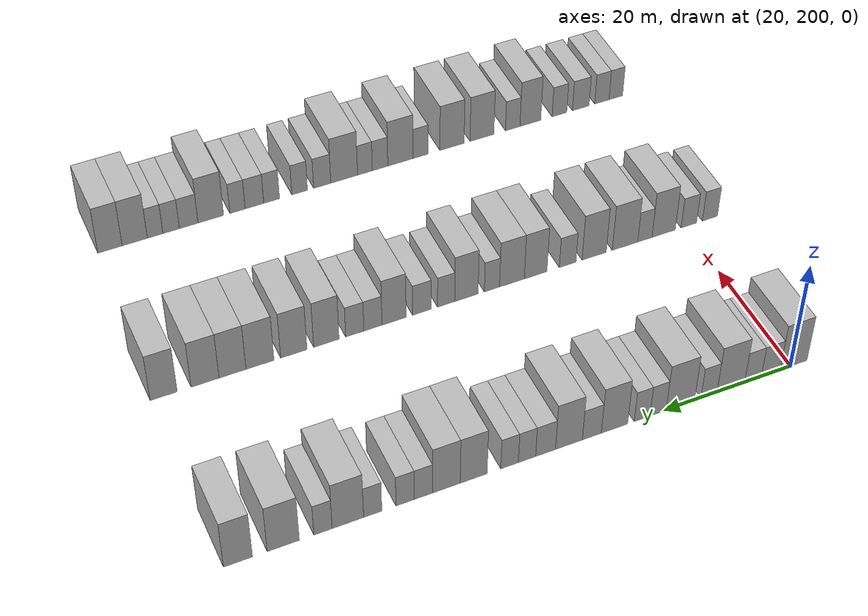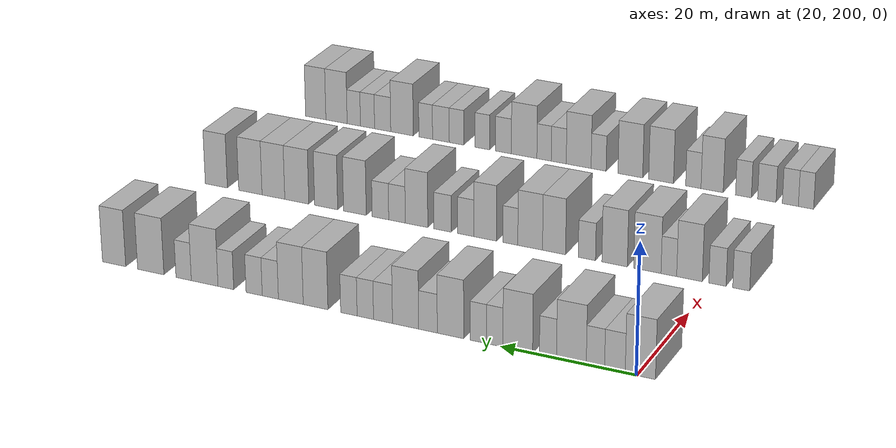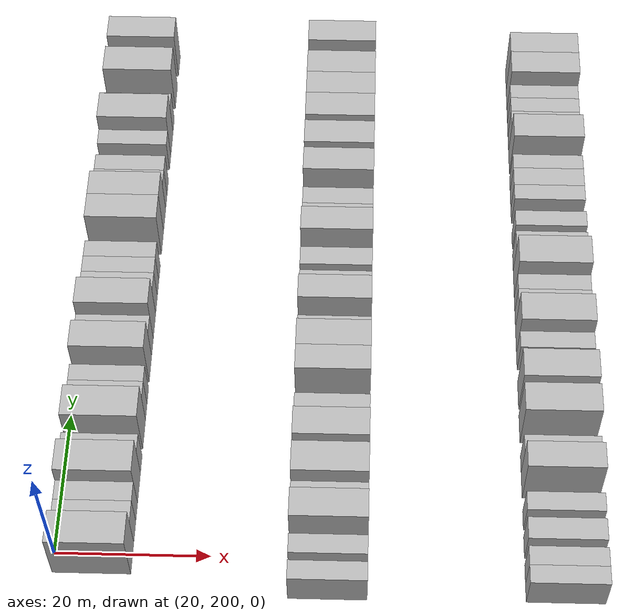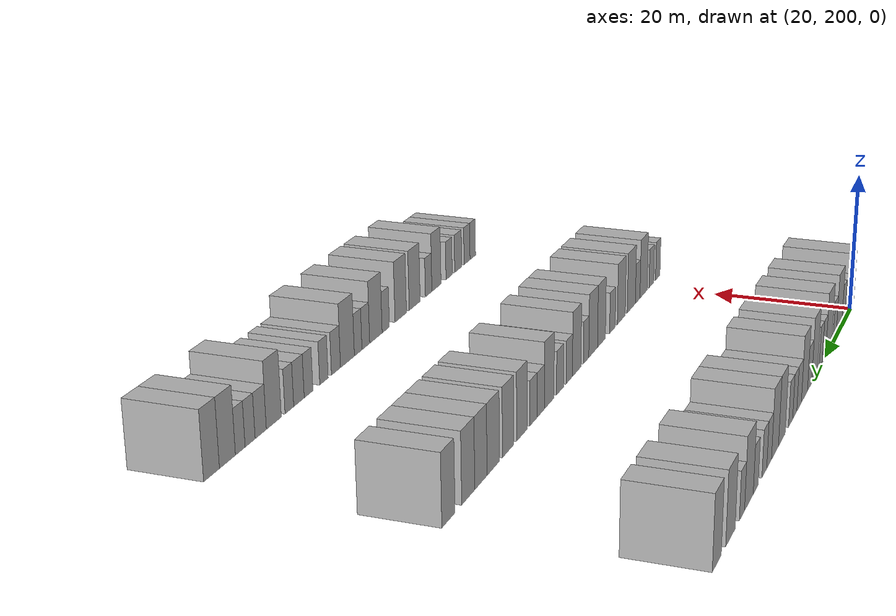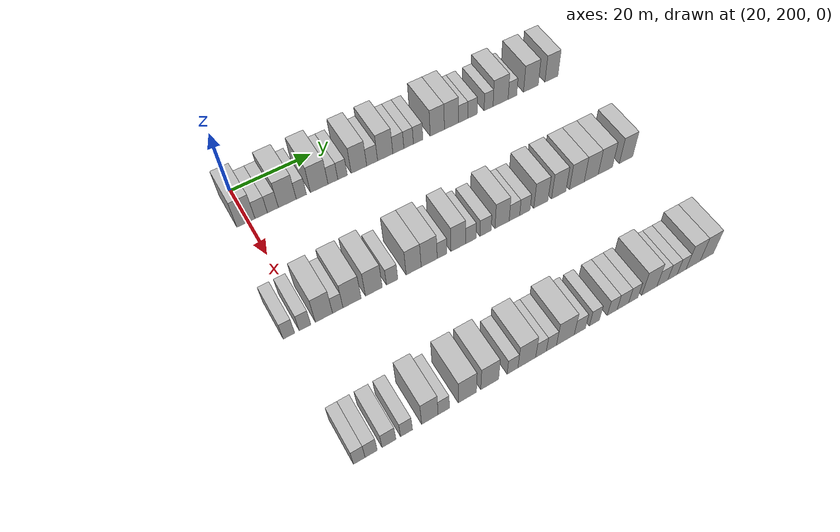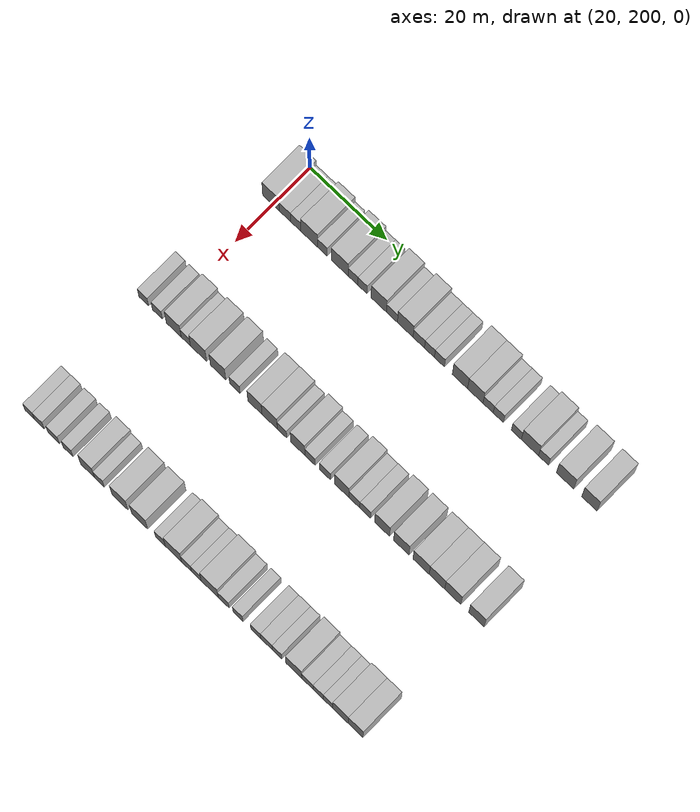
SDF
<sdf version="1.6">
 <world name="default">
  <model name="building_124">
   <static>1</static>
   <pose>25.0000 199.4921 0 0.000000 0.000000 0.000000</pose>
   <link name="link">
    <pose>0 0 4.50 0 0 0</pose>
    <collision name="collision"><geometry><box><size>10.0000 4.3351 9.0000</size></box></geometry></collision>
    <visual name="visual">
     <cast_shadows>0</cast_shadows>
     <geometry><box><size>10.0000 4.3351 9.0000</size></box></geometry>
     <material>
      <script>
       <uri>model://HANNAS_wall/materials/scripts</uri>
       <uri>model://HANNAS_wall/materials/textures</uri>
       <name>vrc/HANNAS_wall</name>
      </script>
     </material>
    </visual>
   </link>
  </model>
  <model name="building_125">
   <static>1</static>
   <pose>25.0000 203.1536 0 0.000000 0.000000 0.000000</pose>
   <link name="link">
    <pose>0 0 3.00 0 0 0</pose>
    <collision name="collision"><geometry><box><size>10.0000 2.9879 6.0000</size></box></geometry></collision>
    <visual name="visual">
     <cast_shadows>0</cast_shadows>
     <geometry><box><size>10.0000 2.9879 6.0000</size></box></geometry>
     <material>
      <script>
       <uri>model://HANNAS_wall/materials/scripts</uri>
       <uri>model://HANNAS_wall/materials/textures</uri>
       <name>vrc/HANNAS_wall</name>
      </script>
     </material>
    </visual>
   </link>
  </model>
  <model name="building_126">
   <static>1</static>
   <pose>25.0000 205.9770 0 0.000000 0.000000 0.000000</pose>
   <link name="link">
    <pose>0 0 3.00 0 0 0</pose>
    <collision name="collision"><geometry><box><size>10.0000 2.6588 6.0000</size></box></geometry></collision>
    <visual name="visual">
     <cast_shadows>0</cast_shadows>
     <geometry><box><size>10.0000 2.6588 6.0000</size></box></geometry>
     <material>
      <script>
       <uri>model://HANNAS_wall/materials/scripts</uri>
       <uri>model://HANNAS_wall/materials/textures</uri>
       <name>vrc/HANNAS_wall</name>
      </script>
     </material>
    </visual>
   </link>
  </model>
  <model name="building_127">
   <static>1</static>
   <pose>25.0000 209.4881 0 0.000000 0.000000 0.000000</pose>
   <link name="link">
    <pose>0 0 4.50 0 0 0</pose>
    <collision name="collision"><geometry><box><size>10.0000 4.3633 9.0000</size></box></geometry></collision>
    <visual name="visual">
     <cast_shadows>0</cast_shadows>
     <geometry><box><size>10.0000 4.3633 9.0000</size></box></geometry>
     <material>
      <script>
       <uri>model://HANNAS_wall/materials/scripts</uri>
       <uri>model://HANNAS_wall/materials/textures</uri>
       <name>vrc/HANNAS_wall</name>
      </script>
     </material>
    </visual>
   </link>
  </model>
  <model name="building_128">
   <static>1</static>
   <pose>25.0000 212.9319 0 0.000000 0.000000 0.000000</pose>
   <link name="link">
    <pose>0 0 3.00 0 0 0</pose>
    <collision name="collision"><geometry><box><size>10.0000 2.5245 6.0000</size></box></geometry></collision>
    <visual name="visual">
     <cast_shadows>0</cast_shadows>
     <geometry><box><size>10.0000 2.5245 6.0000</size></box></geometry>
     <material>
      <script>
       <uri>model://HANNAS_wall/materials/scripts</uri>
       <uri>model://HANNAS_wall/materials/textures</uri>
       <name>vrc/HANNAS_wall</name>
      </script>
     </material>
    </visual>
   </link>
  </model>
  <model name="building_129">
   <static>1</static>
   <pose>25.0000 217.4021 0 0.000000 0.000000 0.000000</pose>
   <link name="link">
    <pose>0 0 4.50 0 0 0</pose>
    <collision name="collision"><geometry><box><size>10.0000 4.4158 9.0000</size></box></geometry></collision>
    <visual name="visual">
     <cast_shadows>0</cast_shadows>
     <geometry><box><size>10.0000 4.4158 9.0000</size></box></geometry>
     <material>
      <script>
       <uri>model://HANNAS_wall/materials/scripts</uri>
       <uri>model://HANNAS_wall/materials/textures</uri>
       <name>vrc/HANNAS_wall</name>
      </script>
     </material>
    </visual>
   </link>
  </model>
  <model name="building_130">
   <static>1</static>
   <pose>25.0000 220.8571 0 0.000000 0.000000 0.000000</pose>
   <link name="link">
    <pose>0 0 3.00 0 0 0</pose>
    <collision name="collision"><geometry><box><size>10.0000 2.4944 6.0000</size></box></geometry></collision>
    <visual name="visual">
     <cast_shadows>0</cast_shadows>
     <geometry><box><size>10.0000 2.4944 6.0000</size></box></geometry>
     <material>
      <script>
       <uri>model://HANNAS_wall/materials/scripts</uri>
       <uri>model://HANNAS_wall/materials/textures</uri>
       <name>vrc/HANNAS_wall</name>
      </script>
     </material>
    </visual>
   </link>
  </model>
  <model name="building_131">
   <static>1</static>
   <pose>25.0000 223.3138 0 0.000000 0.000000 0.000000</pose>
   <link name="link">
    <pose>0 0 3.00 0 0 0</pose>
    <collision name="collision"><geometry><box><size>10.0000 2.4189 6.0000</size></box></geometry></collision>
    <visual name="visual">
     <cast_shadows>0</cast_shadows>
     <geometry><box><size>10.0000 2.4189 6.0000</size></box></geometry>
     <material>
      <script>
       <uri>model://HANNAS_wall/materials/scripts</uri>
       <uri>model://HANNAS_wall/materials/textures</uri>
       <name>vrc/HANNAS_wall</name>
      </script>
     </material>
    </visual>
   </link>
  </model>
  <model name="building_132">
   <static>1</static>
   <pose>25.0000 227.5290 0 0.000000 0.000000 0.000000</pose>
   <link name="link">
    <pose>0 0 4.50 0 0 0</pose>
    <collision name="collision"><geometry><box><size>10.0000 4.0116 9.0000</size></box></geometry></collision>
    <visual name="visual">
     <cast_shadows>0</cast_shadows>
     <geometry><box><size>10.0000 4.0116 9.0000</size></box></geometry>
     <material>
      <script>
       <uri>model://HANNAS_wall/materials/scripts</uri>
       <uri>model://HANNAS_wall/materials/textures</uri>
       <name>vrc/HANNAS_wall</name>
      </script>
     </material>
    </visual>
   </link>
  </model>
  <model name="building_133">
   <static>1</static>
   <pose>25.0000 230.9616 0 0.000000 0.000000 0.000000</pose>
   <link name="link">
    <pose>0 0 3.00 0 0 0</pose>
    <collision name="collision"><geometry><box><size>10.0000 2.8536 6.0000</size></box></geometry></collision>
    <visual name="visual">
     <cast_shadows>0</cast_shadows>
     <geometry><box><size>10.0000 2.8536 6.0000</size></box></geometry>
     <material>
      <script>
       <uri>model://HANNAS_wall/materials/scripts</uri>
       <uri>model://HANNAS_wall/materials/textures</uri>
       <name>vrc/HANNAS_wall</name>
      </script>
     </material>
    </visual>
   </link>
  </model>
  <model name="building_134">
   <static>1</static>
   <pose>25.0000 234.4057 0 0.000000 0.000000 0.000000</pose>
   <link name="link">
    <pose>0 0 4.50 0 0 0</pose>
    <collision name="collision"><geometry><box><size>10.0000 4.0347 9.0000</size></box></geometry></collision>
    <visual name="visual">
     <cast_shadows>0</cast_shadows>
     <geometry><box><size>10.0000 4.0347 9.0000</size></box></geometry>
     <material>
      <script>
       <uri>model://HANNAS_wall/materials/scripts</uri>
       <uri>model://HANNAS_wall/materials/textures</uri>
       <name>vrc/HANNAS_wall</name>
      </script>
     </material>
    </visual>
   </link>
  </model>
  <model name="building_135">
   <static>1</static>
   <pose>25.0000 237.8951 0 0.000000 0.000000 0.000000</pose>
   <link name="link">
    <pose>0 0 3.00 0 0 0</pose>
    <collision name="collision"><geometry><box><size>10.0000 2.9441 6.0000</size></box></geometry></collision>
    <visual name="visual">
     <cast_shadows>0</cast_shadows>
     <geometry><box><size>10.0000 2.9441 6.0000</size></box></geometry>
     <material>
      <script>
       <uri>model://HANNAS_wall/materials/scripts</uri>
       <uri>model://HANNAS_wall/materials/textures</uri>
       <name>vrc/HANNAS_wall</name>
      </script>
     </material>
    </visual>
   </link>
  </model>
  <model name="building_136">
   <static>1</static>
   <pose>25.0000 240.6476 0 0.000000 0.000000 0.000000</pose>
   <link name="link">
    <pose>0 0 3.00 0 0 0</pose>
    <collision name="collision"><geometry><box><size>10.0000 2.5608 6.0000</size></box></geometry></collision>
    <visual name="visual">
     <cast_shadows>0</cast_shadows>
     <geometry><box><size>10.0000 2.5608 6.0000</size></box></geometry>
     <material>
      <script>
       <uri>model://HANNAS_wall/materials/scripts</uri>
       <uri>model://HANNAS_wall/materials/textures</uri>
       <name>vrc/HANNAS_wall</name>
      </script>
     </material>
    </visual>
   </link>
  </model>
  <model name="building_137">
   <static>1</static>
   <pose>25.0000 243.2181 0 0.000000 0.000000 0.000000</pose>
   <link name="link">
    <pose>0 0 3.00 0 0 0</pose>
    <collision name="collision"><geometry><box><size>10.0000 2.5803 6.0000</size></box></geometry></collision>
    <visual name="visual">
     <cast_shadows>0</cast_shadows>
     <geometry><box><size>10.0000 2.5803 6.0000</size></box></geometry>
     <material>
      <script>
       <uri>model://HANNAS_wall/materials/scripts</uri>
       <uri>model://HANNAS_wall/materials/textures</uri>
       <name>vrc/HANNAS_wall</name>
      </script>
     </material>
    </visual>
   </link>
  </model>
  <model name="building_138">
   <static>1</static>
   <pose>25.0000 248.4667 0 0.000000 0.000000 0.000000</pose>
   <link name="link">
    <pose>0 0 4.50 0 0 0</pose>
    <collision name="collision"><geometry><box><size>10.0000 3.9170 9.0000</size></box></geometry></collision>
    <visual name="visual">
     <cast_shadows>0</cast_shadows>
     <geometry><box><size>10.0000 3.9170 9.0000</size></box></geometry>
     <material>
      <script>
       <uri>model://HANNAS_wall/materials/scripts</uri>
       <uri>model://HANNAS_wall/materials/textures</uri>
       <name>vrc/HANNAS_wall</name>
      </script>
     </material>
    </visual>
   </link>
  </model>
  <model name="building_139">
   <static>1</static>
   <pose>25.0000 252.4111 0 0.000000 0.000000 0.000000</pose>
   <link name="link">
    <pose>0 0 4.50 0 0 0</pose>
    <collision name="collision"><geometry><box><size>10.0000 3.9717 9.0000</size></box></geometry></collision>
    <visual name="visual">
     <cast_shadows>0</cast_shadows>
     <geometry><box><size>10.0000 3.9717 9.0000</size></box></geometry>
     <material>
      <script>
       <uri>model://HANNAS_wall/materials/scripts</uri>
       <uri>model://HANNAS_wall/materials/textures</uri>
       <name>vrc/HANNAS_wall</name>
      </script>
     </material>
    </visual>
   </link>
  </model>
  <model name="building_140">
   <static>1</static>
   <pose>25.0000 255.6974 0 0.000000 0.000000 0.000000</pose>
   <link name="link">
    <pose>0 0 3.00 0 0 0</pose>
    <collision name="collision"><geometry><box><size>10.0000 2.6010 6.0000</size></box></geometry></collision>
    <visual name="visual">
     <cast_shadows>0</cast_shadows>
     <geometry><box><size>10.0000 2.6010 6.0000</size></box></geometry>
     <material>
      <script>
       <uri>model://HANNAS_wall/materials/scripts</uri>
       <uri>model://HANNAS_wall/materials/textures</uri>
       <name>vrc/HANNAS_wall</name>
      </script>
     </material>
    </visual>
   </link>
  </model>
  <model name="building_141">
   <static>1</static>
   <pose>25.0000 258.3060 0 0.000000 0.000000 0.000000</pose>
   <link name="link">
    <pose>0 0 3.00 0 0 0</pose>
    <collision name="collision"><geometry><box><size>10.0000 2.6162 6.0000</size></box></geometry></collision>
    <visual name="visual">
     <cast_shadows>0</cast_shadows>
     <geometry><box><size>10.0000 2.6162 6.0000</size></box></geometry>
     <material>
      <script>
       <uri>model://HANNAS_wall/materials/scripts</uri>
       <uri>model://HANNAS_wall/materials/textures</uri>
       <name>vrc/HANNAS_wall</name>
      </script>
     </material>
    </visual>
   </link>
  </model>
  <model name="building_142">
   <static>1</static>
   <pose>25.0000 262.8989 0 0.000000 0.000000 0.000000</pose>
   <link name="link">
    <pose>0 0 3.00 0 0 0</pose>
    <collision name="collision"><geometry><box><size>10.0000 2.5695 6.0000</size></box></geometry></collision>
    <visual name="visual">
     <cast_shadows>0</cast_shadows>
     <geometry><box><size>10.0000 2.5695 6.0000</size></box></geometry>
     <material>
      <script>
       <uri>model://HANNAS_wall/materials/scripts</uri>
       <uri>model://HANNAS_wall/materials/textures</uri>
       <name>vrc/HANNAS_wall</name>
      </script>
     </material>
    </visual>
   </link>
  </model>
  <model name="building_143">
   <static>1</static>
   <pose>25.0000 266.3739 0 0.000000 0.000000 0.000000</pose>
   <link name="link">
    <pose>0 0 4.50 0 0 0</pose>
    <collision name="collision"><geometry><box><size>10.0000 4.3806 9.0000</size></box></geometry></collision>
    <visual name="visual">
     <cast_shadows>0</cast_shadows>
     <geometry><box><size>10.0000 4.3806 9.0000</size></box></geometry>
     <material>
      <script>
       <uri>model://HANNAS_wall/materials/scripts</uri>
       <uri>model://HANNAS_wall/materials/textures</uri>
       <name>vrc/HANNAS_wall</name>
      </script>
     </material>
    </visual>
   </link>
  </model>
  <model name="building_144">
   <static>1</static>
   <pose>25.0000 269.8339 0 0.000000 0.000000 0.000000</pose>
   <link name="link">
    <pose>0 0 3.00 0 0 0</pose>
    <collision name="collision"><geometry><box><size>10.0000 2.5394 6.0000</size></box></geometry></collision>
    <visual name="visual">
     <cast_shadows>0</cast_shadows>
     <geometry><box><size>10.0000 2.5394 6.0000</size></box></geometry>
     <material>
      <script>
       <uri>model://HANNAS_wall/materials/scripts</uri>
       <uri>model://HANNAS_wall/materials/textures</uri>
       <name>vrc/HANNAS_wall</name>
      </script>
     </material>
    </visual>
   </link>
  </model>
  <model name="building_145">
   <static>1</static>
   <pose>25.0000 275.3001 0 0.000000 0.000000 0.000000</pose>
   <link name="link">
    <pose>0 0 4.50 0 0 0</pose>
    <collision name="collision"><geometry><box><size>10.0000 4.3931 9.0000</size></box></geometry></collision>
    <visual name="visual">
     <cast_shadows>0</cast_shadows>
     <geometry><box><size>10.0000 4.3931 9.0000</size></box></geometry>
     <material>
      <script>
       <uri>model://HANNAS_wall/materials/scripts</uri>
       <uri>model://HANNAS_wall/materials/textures</uri>
       <name>vrc/HANNAS_wall</name>
      </script>
     </material>
    </visual>
   </link>
  </model>
  <model name="building_146">
   <static>1</static>
   <pose>25.0000 281.4578 0 0.000000 0.000000 0.000000</pose>
   <link name="link">
    <pose>0 0 4.50 0 0 0</pose>
    <collision name="collision"><geometry><box><size>10.0000 3.9224 9.0000</size></box></geometry></collision>
    <visual name="visual">
     <cast_shadows>0</cast_shadows>
     <geometry><box><size>10.0000 3.9224 9.0000</size></box></geometry>
     <material>
      <script>
       <uri>model://HANNAS_wall/materials/scripts</uri>
       <uri>model://HANNAS_wall/materials/textures</uri>
       <name>vrc/HANNAS_wall</name>
      </script>
     </material>
    </visual>
   </link>
  </model>
  <model name="building_252">
   <static>1</static>
   <pose>55.0000 195.7631 0 0.000000 0.000000 0.000000</pose>
   <link name="link">
    <pose>0 0 3.00 0 0 0</pose>
    <collision name="collision"><geometry><box><size>10.0000 2.5574 6.0000</size></box></geometry></collision>
    <visual name="visual">
     <cast_shadows>0</cast_shadows>
     <geometry><box><size>10.0000 2.5574 6.0000</size></box></geometry>
     <material>
      <script>
       <uri>model://HANNAS_wall/materials/scripts</uri>
       <uri>model://HANNAS_wall/materials/textures</uri>
       <name>vrc/HANNAS_wall</name>
      </script>
     </material>
    </visual>
   </link>
  </model>
  <model name="building_253">
   <static>1</static>
   <pose>55.0000 199.3489 0 0.000000 0.000000 0.000000</pose>
   <link name="link">
    <pose>0 0 3.00 0 0 0</pose>
    <collision name="collision"><geometry><box><size>10.0000 2.6143 6.0000</size></box></geometry></collision>
    <visual name="visual">
     <cast_shadows>0</cast_shadows>
     <geometry><box><size>10.0000 2.6143 6.0000</size></box></geometry>
     <material>
      <script>
       <uri>model://HANNAS_wall/materials/scripts</uri>
       <uri>model://HANNAS_wall/materials/textures</uri>
       <name>vrc/HANNAS_wall</name>
      </script>
     </material>
    </visual>
   </link>
  </model>
  <model name="building_254">
   <static>1</static>
   <pose>55.0000 203.6122 0 0.000000 0.000000 0.000000</pose>
   <link name="link">
    <pose>0 0 4.50 0 0 0</pose>
    <collision name="collision"><geometry><box><size>10.0000 3.9123 9.0000</size></box></geometry></collision>
    <visual name="visual">
     <cast_shadows>0</cast_shadows>
     <geometry><box><size>10.0000 3.9123 9.0000</size></box></geometry>
     <material>
      <script>
       <uri>model://HANNAS_wall/materials/scripts</uri>
       <uri>model://HANNAS_wall/materials/textures</uri>
       <name>vrc/HANNAS_wall</name>
      </script>
     </material>
    </visual>
   </link>
  </model>
  <model name="building_255">
   <static>1</static>
   <pose>55.0000 206.7726 0 0.000000 0.000000 0.000000</pose>
   <link name="link">
    <pose>0 0 3.00 0 0 0</pose>
    <collision name="collision"><geometry><box><size>10.0000 2.4084 6.0000</size></box></geometry></collision>
    <visual name="visual">
     <cast_shadows>0</cast_shadows>
     <geometry><box><size>10.0000 2.4084 6.0000</size></box></geometry>
     <material>
      <script>
       <uri>model://HANNAS_wall/materials/scripts</uri>
       <uri>model://HANNAS_wall/materials/textures</uri>
       <name>vrc/HANNAS_wall</name>
      </script>
     </material>
    </visual>
   </link>
  </model>
  <model name="building_256">
   <static>1</static>
   <pose>55.0000 210.0879 0 0.000000 0.000000 0.000000</pose>
   <link name="link">
    <pose>0 0 4.50 0 0 0</pose>
    <collision name="collision"><geometry><box><size>10.0000 4.2222 9.0000</size></box></geometry></collision>
    <visual name="visual">
     <cast_shadows>0</cast_shadows>
     <geometry><box><size>10.0000 4.2222 9.0000</size></box></geometry>
     <material>
      <script>
       <uri>model://HANNAS_wall/materials/scripts</uri>
       <uri>model://HANNAS_wall/materials/textures</uri>
       <name>vrc/HANNAS_wall</name>
      </script>
     </material>
    </visual>
   </link>
  </model>
  <model name="building_257">
   <static>1</static>
   <pose>55.0000 215.1869 0 0.000000 0.000000 0.000000</pose>
   <link name="link">
    <pose>0 0 4.50 0 0 0</pose>
    <collision name="collision"><geometry><box><size>10.0000 3.9758 9.0000</size></box></geometry></collision>
    <visual name="visual">
     <cast_shadows>0</cast_shadows>
     <geometry><box><size>10.0000 3.9758 9.0000</size></box></geometry>
     <material>
      <script>
       <uri>model://HANNAS_wall/materials/scripts</uri>
       <uri>model://HANNAS_wall/materials/textures</uri>
       <name>vrc/HANNAS_wall</name>
      </script>
     </material>
    </visual>
   </link>
  </model>
  <model name="building_258">
   <static>1</static>
   <pose>55.0000 219.5380 0 0.000000 0.000000 0.000000</pose>
   <link name="link">
    <pose>0 0 3.00 0 0 0</pose>
    <collision name="collision"><geometry><box><size>10.0000 2.7265 6.0000</size></box></geometry></collision>
    <visual name="visual">
     <cast_shadows>0</cast_shadows>
     <geometry><box><size>10.0000 2.7265 6.0000</size></box></geometry>
     <material>
      <script>
       <uri>model://HANNAS_wall/materials/scripts</uri>
       <uri>model://HANNAS_wall/materials/textures</uri>
       <name>vrc/HANNAS_wall</name>
      </script>
     </material>
    </visual>
   </link>
  </model>
  <model name="building_259">
   <static>1</static>
   <pose>55.0000 224.7350 0 0.000000 0.000000 0.000000</pose>
   <link name="link">
    <pose>0 0 4.50 0 0 0</pose>
    <collision name="collision"><geometry><box><size>10.0000 3.6676 9.0000</size></box></geometry></collision>
    <visual name="visual">
     <cast_shadows>0</cast_shadows>
     <geometry><box><size>10.0000 3.6676 9.0000</size></box></geometry>
     <material>
      <script>
       <uri>model://HANNAS_wall/materials/scripts</uri>
       <uri>model://HANNAS_wall/materials/textures</uri>
       <name>vrc/HANNAS_wall</name>
      </script>
     </material>
    </visual>
   </link>
  </model>
  <model name="building_260">
   <static>1</static>
   <pose>55.0000 228.5532 0 0.000000 0.000000 0.000000</pose>
   <link name="link">
    <pose>0 0 4.50 0 0 0</pose>
    <collision name="collision"><geometry><box><size>10.0000 3.9689 9.0000</size></box></geometry></collision>
    <visual name="visual">
     <cast_shadows>0</cast_shadows>
     <geometry><box><size>10.0000 3.9689 9.0000</size></box></geometry>
     <material>
      <script>
       <uri>model://HANNAS_wall/materials/scripts</uri>
       <uri>model://HANNAS_wall/materials/textures</uri>
       <name>vrc/HANNAS_wall</name>
      </script>
     </material>
    </visual>
   </link>
  </model>
  <model name="building_261">
   <static>1</static>
   <pose>55.0000 231.7498 0 0.000000 0.000000 0.000000</pose>
   <link name="link">
    <pose>0 0 3.00 0 0 0</pose>
    <collision name="collision"><geometry><box><size>10.0000 2.4243 6.0000</size></box></geometry></collision>
    <visual name="visual">
     <cast_shadows>0</cast_shadows>
     <geometry><box><size>10.0000 2.4243 6.0000</size></box></geometry>
     <material>
      <script>
       <uri>model://HANNAS_wall/materials/scripts</uri>
       <uri>model://HANNAS_wall/materials/textures</uri>
       <name>vrc/HANNAS_wall</name>
      </script>
     </material>
    </visual>
   </link>
  </model>
  <model name="building_262">
   <static>1</static>
   <pose>55.0000 235.8043 0 0.000000 0.000000 0.000000</pose>
   <link name="link">
    <pose>0 0 4.50 0 0 0</pose>
    <collision name="collision"><geometry><box><size>10.0000 3.6847 9.0000</size></box></geometry></collision>
    <visual name="visual">
     <cast_shadows>0</cast_shadows>
     <geometry><box><size>10.0000 3.6847 9.0000</size></box></geometry>
     <material>
      <script>
       <uri>model://HANNAS_wall/materials/scripts</uri>
       <uri>model://HANNAS_wall/materials/textures</uri>
       <name>vrc/HANNAS_wall</name>
      </script>
     </material>
    </visual>
   </link>
  </model>
  <model name="building_263">
   <static>1</static>
   <pose>55.0000 238.9921 0 0.000000 0.000000 0.000000</pose>
   <link name="link">
    <pose>0 0 3.00 0 0 0</pose>
    <collision name="collision"><geometry><box><size>10.0000 2.6908 6.0000</size></box></geometry></collision>
    <visual name="visual">
     <cast_shadows>0</cast_shadows>
     <geometry><box><size>10.0000 2.6908 6.0000</size></box></geometry>
     <material>
      <script>
       <uri>model://HANNAS_wall/materials/scripts</uri>
       <uri>model://HANNAS_wall/materials/textures</uri>
       <name>vrc/HANNAS_wall</name>
      </script>
     </material>
    </visual>
   </link>
  </model>
  <model name="building_264">
   <static>1</static>
   <pose>55.0000 242.7840 0 0.000000 0.000000 0.000000</pose>
   <link name="link">
    <pose>0 0 3.00 0 0 0</pose>
    <collision name="collision"><geometry><box><size>10.0000 2.8929 6.0000</size></box></geometry></collision>
    <visual name="visual">
     <cast_shadows>0</cast_shadows>
     <geometry><box><size>10.0000 2.8929 6.0000</size></box></geometry>
     <material>
      <script>
       <uri>model://HANNAS_wall/materials/scripts</uri>
       <uri>model://HANNAS_wall/materials/textures</uri>
       <name>vrc/HANNAS_wall</name>
      </script>
     </material>
    </visual>
   </link>
  </model>
  <model name="building_265">
   <static>1</static>
   <pose>55.0000 247.0958 0 0.000000 0.000000 0.000000</pose>
   <link name="link">
    <pose>0 0 4.50 0 0 0</pose>
    <collision name="collision"><geometry><box><size>10.0000 3.7306 9.0000</size></box></geometry></collision>
    <visual name="visual">
     <cast_shadows>0</cast_shadows>
     <geometry><box><size>10.0000 3.7306 9.0000</size></box></geometry>
     <material>
      <script>
       <uri>model://HANNAS_wall/materials/scripts</uri>
       <uri>model://HANNAS_wall/materials/textures</uri>
       <name>vrc/HANNAS_wall</name>
      </script>
     </material>
    </visual>
   </link>
  </model>
  <model name="building_266">
   <static>1</static>
   <pose>55.0000 250.3525 0 0.000000 0.000000 0.000000</pose>
   <link name="link">
    <pose>0 0 3.00 0 0 0</pose>
    <collision name="collision"><geometry><box><size>10.0000 2.7828 6.0000</size></box></geometry></collision>
    <visual name="visual">
     <cast_shadows>0</cast_shadows>
     <geometry><box><size>10.0000 2.7828 6.0000</size></box></geometry>
     <material>
      <script>
       <uri>model://HANNAS_wall/materials/scripts</uri>
       <uri>model://HANNAS_wall/materials/textures</uri>
       <name>vrc/HANNAS_wall</name>
      </script>
     </material>
    </visual>
   </link>
  </model>
  <model name="building_267">
   <static>1</static>
   <pose>55.0000 253.1292 0 0.000000 0.000000 0.000000</pose>
   <link name="link">
    <pose>0 0 3.00 0 0 0</pose>
    <collision name="collision"><geometry><box><size>10.0000 2.7707 6.0000</size></box></geometry></collision>
    <visual name="visual">
     <cast_shadows>0</cast_shadows>
     <geometry><box><size>10.0000 2.7707 6.0000</size></box></geometry>
     <material>
      <script>
       <uri>model://HANNAS_wall/materials/scripts</uri>
       <uri>model://HANNAS_wall/materials/textures</uri>
       <name>vrc/HANNAS_wall</name>
      </script>
     </material>
    </visual>
   </link>
  </model>
  <model name="building_268">
   <static>1</static>
   <pose>55.0000 257.4357 0 0.000000 0.000000 0.000000</pose>
   <link name="link">
    <pose>0 0 4.50 0 0 0</pose>
    <collision name="collision"><geometry><box><size>10.0000 3.8424 9.0000</size></box></geometry></collision>
    <visual name="visual">
     <cast_shadows>0</cast_shadows>
     <geometry><box><size>10.0000 3.8424 9.0000</size></box></geometry>
     <material>
      <script>
       <uri>model://HANNAS_wall/materials/scripts</uri>
       <uri>model://HANNAS_wall/materials/textures</uri>
       <name>vrc/HANNAS_wall</name>
      </script>
     </material>
    </visual>
   </link>
  </model>
  <model name="building_269">
   <static>1</static>
   <pose>55.0000 262.3262 0 0.000000 0.000000 0.000000</pose>
   <link name="link">
    <pose>0 0 4.50 0 0 0</pose>
    <collision name="collision"><geometry><box><size>10.0000 3.9385 9.0000</size></box></geometry></collision>
    <visual name="visual">
     <cast_shadows>0</cast_shadows>
     <geometry><box><size>10.0000 3.9385 9.0000</size></box></geometry>
     <material>
      <script>
       <uri>model://HANNAS_wall/materials/scripts</uri>
       <uri>model://HANNAS_wall/materials/textures</uri>
       <name>vrc/HANNAS_wall</name>
      </script>
     </material>
    </visual>
   </link>
  </model>
  <model name="building_270">
   <static>1</static>
   <pose>55.0000 267.3668 0 0.000000 0.000000 0.000000</pose>
   <link name="link">
    <pose>0 0 4.50 0 0 0</pose>
    <collision name="collision"><geometry><box><size>10.0000 4.1429 9.0000</size></box></geometry></collision>
    <visual name="visual">
     <cast_shadows>0</cast_shadows>
     <geometry><box><size>10.0000 4.1429 9.0000</size></box></geometry>
     <material>
      <script>
       <uri>model://HANNAS_wall/materials/scripts</uri>
       <uri>model://HANNAS_wall/materials/textures</uri>
       <name>vrc/HANNAS_wall</name>
      </script>
     </material>
    </visual>
   </link>
  </model>
  <model name="building_271">
   <static>1</static>
   <pose>55.0000 271.4157 0 0.000000 0.000000 0.000000</pose>
   <link name="link">
    <pose>0 0 4.50 0 0 0</pose>
    <collision name="collision"><geometry><box><size>10.0000 3.9547 9.0000</size></box></geometry></collision>
    <visual name="visual">
     <cast_shadows>0</cast_shadows>
     <geometry><box><size>10.0000 3.9547 9.0000</size></box></geometry>
     <material>
      <script>
       <uri>model://HANNAS_wall/materials/scripts</uri>
       <uri>model://HANNAS_wall/materials/textures</uri>
       <name>vrc/HANNAS_wall</name>
      </script>
     </material>
    </visual>
   </link>
  </model>
  <model name="building_272">
   <static>1</static>
   <pose>55.0000 275.4317 0 0.000000 0.000000 0.000000</pose>
   <link name="link">
    <pose>0 0 4.50 0 0 0</pose>
    <collision name="collision"><geometry><box><size>10.0000 4.0773 9.0000</size></box></geometry></collision>
    <visual name="visual">
     <cast_shadows>0</cast_shadows>
     <geometry><box><size>10.0000 4.0773 9.0000</size></box></geometry>
     <material>
      <script>
       <uri>model://HANNAS_wall/materials/scripts</uri>
       <uri>model://HANNAS_wall/materials/textures</uri>
       <name>vrc/HANNAS_wall</name>
      </script>
     </material>
    </visual>
   </link>
  </model>
  <model name="building_273">
   <static>1</static>
   <pose>55.0000 281.4209 0 0.000000 0.000000 0.000000</pose>
   <link name="link">
    <pose>0 0 4.50 0 0 0</pose>
    <collision name="collision"><geometry><box><size>10.0000 3.9011 9.0000</size></box></geometry></collision>
    <visual name="visual">
     <cast_shadows>0</cast_shadows>
     <geometry><box><size>10.0000 3.9011 9.0000</size></box></geometry>
     <material>
      <script>
       <uri>model://HANNAS_wall/materials/scripts</uri>
       <uri>model://HANNAS_wall/materials/textures</uri>
       <name>vrc/HANNAS_wall</name>
      </script>
     </material>
    </visual>
   </link>
  </model>
  <model name="building_394">
   <static>1</static>
   <pose>85.0000 195.8944 0 0.000000 0.000000 0.000000</pose>
   <link name="link">
    <pose>0 0 3.00 0 0 0</pose>
    <collision name="collision"><geometry><box><size>10.0000 2.4308 6.0000</size></box></geometry></collision>
    <visual name="visual">
     <cast_shadows>0</cast_shadows>
     <geometry><box><size>10.0000 2.4308 6.0000</size></box></geometry>
     <material>
      <script>
       <uri>model://HANNAS_wall/materials/scripts</uri>
       <uri>model://HANNAS_wall/materials/textures</uri>
       <name>vrc/HANNAS_wall</name>
      </script>
     </material>
    </visual>
   </link>
  </model>
  <model name="building_395">
   <static>1</static>
   <pose>85.0000 198.3906 0 0.000000 0.000000 0.000000</pose>
   <link name="link">
    <pose>0 0 3.00 0 0 0</pose>
    <collision name="collision"><geometry><box><size>10.0000 2.5618 6.0000</size></box></geometry></collision>
    <visual name="visual">
     <cast_shadows>0</cast_shadows>
     <geometry><box><size>10.0000 2.5618 6.0000</size></box></geometry>
     <material>
      <script>
       <uri>model://HANNAS_wall/materials/scripts</uri>
       <uri>model://HANNAS_wall/materials/textures</uri>
       <name>vrc/HANNAS_wall</name>
      </script>
     </material>
    </visual>
   </link>
  </model>
  <model name="building_396">
   <static>1</static>
   <pose>85.0000 202.1528 0 0.000000 0.000000 0.000000</pose>
   <link name="link">
    <pose>0 0 3.00 0 0 0</pose>
    <collision name="collision"><geometry><box><size>10.0000 2.9625 6.0000</size></box></geometry></collision>
    <visual name="visual">
     <cast_shadows>0</cast_shadows>
     <geometry><box><size>10.0000 2.9625 6.0000</size></box></geometry>
     <material>
      <script>
       <uri>model://HANNAS_wall/materials/scripts</uri>
       <uri>model://HANNAS_wall/materials/textures</uri>
       <name>vrc/HANNAS_wall</name>
      </script>
     </material>
    </visual>
   </link>
  </model>
  <model name="building_397">
   <static>1</static>
   <pose>85.0000 205.9203 0 0.000000 0.000000 0.000000</pose>
   <link name="link">
    <pose>0 0 3.00 0 0 0</pose>
    <collision name="collision"><geometry><box><size>10.0000 2.5725 6.0000</size></box></geometry></collision>
    <visual name="visual">
     <cast_shadows>0</cast_shadows>
     <geometry><box><size>10.0000 2.5725 6.0000</size></box></geometry>
     <material>
      <script>
       <uri>model://HANNAS_wall/materials/scripts</uri>
       <uri>model://HANNAS_wall/materials/textures</uri>
       <name>vrc/HANNAS_wall</name>
      </script>
     </material>
    </visual>
   </link>
  </model>
  <model name="building_398">
   <static>1</static>
   <pose>85.0000 211.0195 0 0.000000 0.000000 0.000000</pose>
   <link name="link">
    <pose>0 0 4.50 0 0 0</pose>
    <collision name="collision"><geometry><box><size>10.0000 3.6259 9.0000</size></box></geometry></collision>
    <visual name="visual">
     <cast_shadows>0</cast_shadows>
     <geometry><box><size>10.0000 3.6259 9.0000</size></box></geometry>
     <material>
      <script>
       <uri>model://HANNAS_wall/materials/scripts</uri>
       <uri>model://HANNAS_wall/materials/textures</uri>
       <name>vrc/HANNAS_wall</name>
      </script>
     </material>
    </visual>
   </link>
  </model>
  <model name="building_399">
   <static>1</static>
   <pose>85.0000 214.0925 0 0.000000 0.000000 0.000000</pose>
   <link name="link">
    <pose>0 0 3.00 0 0 0</pose>
    <collision name="collision"><geometry><box><size>10.0000 2.5201 6.0000</size></box></geometry></collision>
    <visual name="visual">
     <cast_shadows>0</cast_shadows>
     <geometry><box><size>10.0000 2.5201 6.0000</size></box></geometry>
     <material>
      <script>
       <uri>model://HANNAS_wall/materials/scripts</uri>
       <uri>model://HANNAS_wall/materials/textures</uri>
       <name>vrc/HANNAS_wall</name>
      </script>
     </material>
    </visual>
   </link>
  </model>
  <model name="building_400">
   <static>1</static>
   <pose>85.0000 219.4092 0 0.000000 0.000000 0.000000</pose>
   <link name="link">
    <pose>0 0 4.50 0 0 0</pose>
    <collision name="collision"><geometry><box><size>10.0000 4.1132 9.0000</size></box></geometry></collision>
    <visual name="visual">
     <cast_shadows>0</cast_shadows>
     <geometry><box><size>10.0000 4.1132 9.0000</size></box></geometry>
     <material>
      <script>
       <uri>model://HANNAS_wall/materials/scripts</uri>
       <uri>model://HANNAS_wall/materials/textures</uri>
       <name>vrc/HANNAS_wall</name>
      </script>
     </material>
    </visual>
   </link>
  </model>
  <model name="building_401">
   <static>1</static>
   <pose>85.0000 224.5325 0 0.000000 0.000000 0.000000</pose>
   <link name="link">
    <pose>0 0 4.50 0 0 0</pose>
    <collision name="collision"><geometry><box><size>10.0000 4.1334 9.0000</size></box></geometry></collision>
    <visual name="visual">
     <cast_shadows>0</cast_shadows>
     <geometry><box><size>10.0000 4.1334 9.0000</size></box></geometry>
     <material>
      <script>
       <uri>model://HANNAS_wall/materials/scripts</uri>
       <uri>model://HANNAS_wall/materials/textures</uri>
       <name>vrc/HANNAS_wall</name>
      </script>
     </material>
    </visual>
   </link>
  </model>
  <model name="building_402">
   <static>1</static>
   <pose>85.0000 229.8648 0 0.000000 0.000000 0.000000</pose>
   <link name="link">
    <pose>0 0 3.00 0 0 0</pose>
    <collision name="collision"><geometry><box><size>10.0000 2.5312 6.0000</size></box></geometry></collision>
    <visual name="visual">
     <cast_shadows>0</cast_shadows>
     <geometry><box><size>10.0000 2.5312 6.0000</size></box></geometry>
     <material>
      <script>
       <uri>model://HANNAS_wall/materials/scripts</uri>
       <uri>model://HANNAS_wall/materials/textures</uri>
       <name>vrc/HANNAS_wall</name>
      </script>
     </material>
    </visual>
   </link>
  </model>
  <model name="building_403">
   <static>1</static>
   <pose>85.0000 233.2435 0 0.000000 0.000000 0.000000</pose>
   <link name="link">
    <pose>0 0 4.50 0 0 0</pose>
    <collision name="collision"><geometry><box><size>10.0000 4.2261 9.0000</size></box></geometry></collision>
    <visual name="visual">
     <cast_shadows>0</cast_shadows>
     <geometry><box><size>10.0000 4.2261 9.0000</size></box></geometry>
     <material>
      <script>
       <uri>model://HANNAS_wall/materials/scripts</uri>
       <uri>model://HANNAS_wall/materials/textures</uri>
       <name>vrc/HANNAS_wall</name>
      </script>
     </material>
    </visual>
   </link>
  </model>
  <model name="building_404">
   <static>1</static>
   <pose>85.0000 236.6423 0 0.000000 0.000000 0.000000</pose>
   <link name="link">
    <pose>0 0 3.00 0 0 0</pose>
    <collision name="collision"><geometry><box><size>10.0000 2.5715 6.0000</size></box></geometry></collision>
    <visual name="visual">
     <cast_shadows>0</cast_shadows>
     <geometry><box><size>10.0000 2.5715 6.0000</size></box></geometry>
     <material>
      <script>
       <uri>model://HANNAS_wall/materials/scripts</uri>
       <uri>model://HANNAS_wall/materials/textures</uri>
       <name>vrc/HANNAS_wall</name>
      </script>
     </material>
    </visual>
   </link>
  </model>
  <model name="building_405">
   <static>1</static>
   <pose>85.0000 239.1560 0 0.000000 0.000000 0.000000</pose>
   <link name="link">
    <pose>0 0 3.00 0 0 0</pose>
    <collision name="collision"><geometry><box><size>10.0000 2.4558 6.0000</size></box></geometry></collision>
    <visual name="visual">
     <cast_shadows>0</cast_shadows>
     <geometry><box><size>10.0000 2.4558 6.0000</size></box></geometry>
     <material>
      <script>
       <uri>model://HANNAS_wall/materials/scripts</uri>
       <uri>model://HANNAS_wall/materials/textures</uri>
       <name>vrc/HANNAS_wall</name>
      </script>
     </material>
    </visual>
   </link>
  </model>
  <model name="building_406">
   <static>1</static>
   <pose>85.0000 242.5874 0 0.000000 0.000000 0.000000</pose>
   <link name="link">
    <pose>0 0 4.50 0 0 0</pose>
    <collision name="collision"><geometry><box><size>10.0000 4.4070 9.0000</size></box></geometry></collision>
    <visual name="visual">
     <cast_shadows>0</cast_shadows>
     <geometry><box><size>10.0000 4.4070 9.0000</size></box></geometry>
     <material>
      <script>
       <uri>model://HANNAS_wall/materials/scripts</uri>
       <uri>model://HANNAS_wall/materials/textures</uri>
       <name>vrc/HANNAS_wall</name>
      </script>
     </material>
    </visual>
   </link>
  </model>
  <model name="building_407">
   <static>1</static>
   <pose>85.0000 246.1930 0 0.000000 0.000000 0.000000</pose>
   <link name="link">
    <pose>0 0 3.00 0 0 0</pose>
    <collision name="collision"><geometry><box><size>10.0000 2.8042 6.0000</size></box></geometry></collision>
    <visual name="visual">
     <cast_shadows>0</cast_shadows>
     <geometry><box><size>10.0000 2.8042 6.0000</size></box></geometry>
     <material>
      <script>
       <uri>model://HANNAS_wall/materials/scripts</uri>
       <uri>model://HANNAS_wall/materials/textures</uri>
       <name>vrc/HANNAS_wall</name>
      </script>
     </material>
    </visual>
   </link>
  </model>
  <model name="building_408">
   <static>1</static>
   <pose>85.0000 249.8617 0 0.000000 0.000000 0.000000</pose>
   <link name="link">
    <pose>0 0 3.00 0 0 0</pose>
    <collision name="collision"><geometry><box><size>10.0000 2.5332 6.0000</size></box></geometry></collision>
    <visual name="visual">
     <cast_shadows>0</cast_shadows>
     <geometry><box><size>10.0000 2.5332 6.0000</size></box></geometry>
     <material>
      <script>
       <uri>model://HANNAS_wall/materials/scripts</uri>
       <uri>model://HANNAS_wall/materials/textures</uri>
       <name>vrc/HANNAS_wall</name>
      </script>
     </material>
    </visual>
   </link>
  </model>
  <model name="building_409">
   <static>1</static>
   <pose>85.0000 254.3962 0 0.000000 0.000000 0.000000</pose>
   <link name="link">
    <pose>0 0 3.00 0 0 0</pose>
    <collision name="collision"><geometry><box><size>10.0000 2.5358 6.0000</size></box></geometry></collision>
    <visual name="visual">
     <cast_shadows>0</cast_shadows>
     <geometry><box><size>10.0000 2.5358 6.0000</size></box></geometry>
     <material>
      <script>
       <uri>model://HANNAS_wall/materials/scripts</uri>
       <uri>model://HANNAS_wall/materials/textures</uri>
       <name>vrc/HANNAS_wall</name>
      </script>
     </material>
    </visual>
   </link>
  </model>
  <model name="building_410">
   <static>1</static>
   <pose>85.0000 257.1534 0 0.000000 0.000000 0.000000</pose>
   <link name="link">
    <pose>0 0 3.00 0 0 0</pose>
    <collision name="collision"><geometry><box><size>10.0000 2.9787 6.0000</size></box></geometry></collision>
    <visual name="visual">
     <cast_shadows>0</cast_shadows>
     <geometry><box><size>10.0000 2.9787 6.0000</size></box></geometry>
     <material>
      <script>
       <uri>model://HANNAS_wall/materials/scripts</uri>
       <uri>model://HANNAS_wall/materials/textures</uri>
       <name>vrc/HANNAS_wall</name>
      </script>
     </material>
    </visual>
   </link>
  </model>
  <model name="building_411">
   <static>1</static>
   <pose>85.0000 259.8568 0 0.000000 0.000000 0.000000</pose>
   <link name="link">
    <pose>0 0 3.00 0 0 0</pose>
    <collision name="collision"><geometry><box><size>10.0000 2.4280 6.0000</size></box></geometry></collision>
    <visual name="visual">
     <cast_shadows>0</cast_shadows>
     <geometry><box><size>10.0000 2.4280 6.0000</size></box></geometry>
     <material>
      <script>
       <uri>model://HANNAS_wall/materials/scripts</uri>
       <uri>model://HANNAS_wall/materials/textures</uri>
       <name>vrc/HANNAS_wall</name>
      </script>
     </material>
    </visual>
   </link>
  </model>
  <model name="building_412">
   <static>1</static>
   <pose>85.0000 264.0906 0 0.000000 0.000000 0.000000</pose>
   <link name="link">
    <pose>0 0 4.50 0 0 0</pose>
    <collision name="collision"><geometry><box><size>10.0000 4.0395 9.0000</size></box></geometry></collision>
    <visual name="visual">
     <cast_shadows>0</cast_shadows>
     <geometry><box><size>10.0000 4.0395 9.0000</size></box></geometry>
     <material>
      <script>
       <uri>model://HANNAS_wall/materials/scripts</uri>
       <uri>model://HANNAS_wall/materials/textures</uri>
       <name>vrc/HANNAS_wall</name>
      </script>
     </material>
    </visual>
   </link>
  </model>
  <model name="building_413">
   <static>1</static>
   <pose>85.0000 267.5709 0 0.000000 0.000000 0.000000</pose>
   <link name="link">
    <pose>0 0 3.00 0 0 0</pose>
    <collision name="collision"><geometry><box><size>10.0000 2.9212 6.0000</size></box></geometry></collision>
    <visual name="visual">
     <cast_shadows>0</cast_shadows>
     <geometry><box><size>10.0000 2.9212 6.0000</size></box></geometry>
     <material>
      <script>
       <uri>model://HANNAS_wall/materials/scripts</uri>
       <uri>model://HANNAS_wall/materials/textures</uri>
       <name>vrc/HANNAS_wall</name>
      </script>
     </material>
    </visual>
   </link>
  </model>
  <model name="building_414">
   <static>1</static>
   <pose>85.0000 270.3111 0 0.000000 0.000000 0.000000</pose>
   <link name="link">
    <pose>0 0 3.00 0 0 0</pose>
    <collision name="collision"><geometry><box><size>10.0000 2.5591 6.0000</size></box></geometry></collision>
    <visual name="visual">
     <cast_shadows>0</cast_shadows>
     <geometry><box><size>10.0000 2.5591 6.0000</size></box></geometry>
     <material>
      <script>
       <uri>model://HANNAS_wall/materials/scripts</uri>
       <uri>model://HANNAS_wall/materials/textures</uri>
       <name>vrc/HANNAS_wall</name>
      </script>
     </material>
    </visual>
   </link>
  </model>
  <model name="building_415">
   <static>1</static>
   <pose>85.0000 272.8024 0 0.000000 0.000000 0.000000</pose>
   <link name="link">
    <pose>0 0 3.00 0 0 0</pose>
    <collision name="collision"><geometry><box><size>10.0000 2.4235 6.0000</size></box></geometry></collision>
    <visual name="visual">
     <cast_shadows>0</cast_shadows>
     <geometry><box><size>10.0000 2.4235 6.0000</size></box></geometry>
     <material>
      <script>
       <uri>model://HANNAS_wall/materials/scripts</uri>
       <uri>model://HANNAS_wall/materials/textures</uri>
       <name>vrc/HANNAS_wall</name>
      </script>
     </material>
    </visual>
   </link>
  </model>
  <model name="building_416">
   <static>1</static>
   <pose>85.0000 275.9594 0 0.000000 0.000000 0.000000</pose>
   <link name="link">
    <pose>0 0 4.50 0 0 0</pose>
    <collision name="collision"><geometry><box><size>10.0000 3.8904 9.0000</size></box></geometry></collision>
    <visual name="visual">
     <cast_shadows>0</cast_shadows>
     <geometry><box><size>10.0000 3.8904 9.0000</size></box></geometry>
     <material>
      <script>
       <uri>model://HANNAS_wall/materials/scripts</uri>
       <uri>model://HANNAS_wall/materials/textures</uri>
       <name>vrc/HANNAS_wall</name>
      </script>
     </material>
    </visual>
   </link>
  </model>
  <model name="building_417">
   <static>1</static>
   <pose>85.0000 279.7711 0 0.000000 0.000000 0.000000</pose>
   <link name="link">
    <pose>0 0 4.50 0 0 0</pose>
    <collision name="collision"><geometry><box><size>10.0000 3.7330 9.0000</size></box></geometry></collision>
    <visual name="visual">
     <cast_shadows>0</cast_shadows>
     <geometry><box><size>10.0000 3.7330 9.0000</size></box></geometry>
     <material>
      <script>
       <uri>model://HANNAS_wall/materials/scripts</uri>
       <uri>model://HANNAS_wall/materials/textures</uri>
       <name>vrc/HANNAS_wall</name>
      </script>
     </material>
    </visual>
   </link>
  </model>
 </world>
</sdf>
